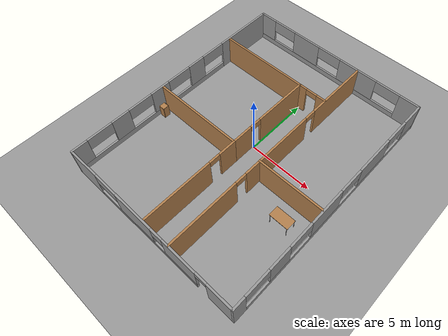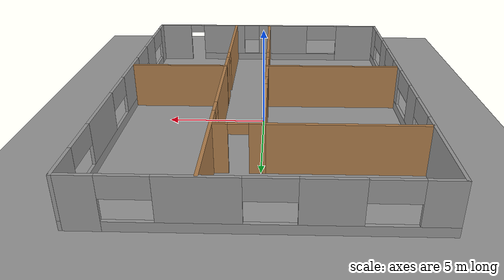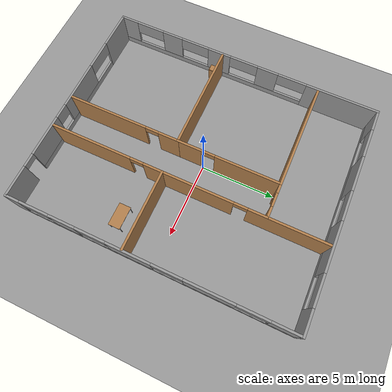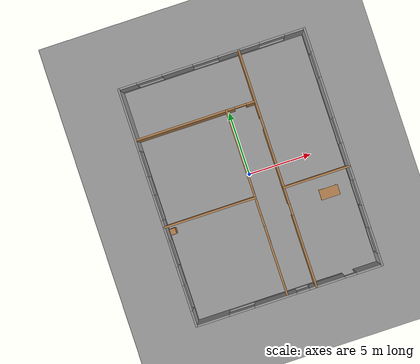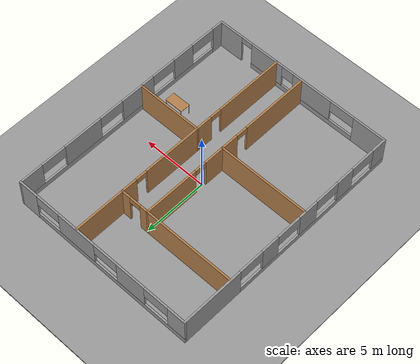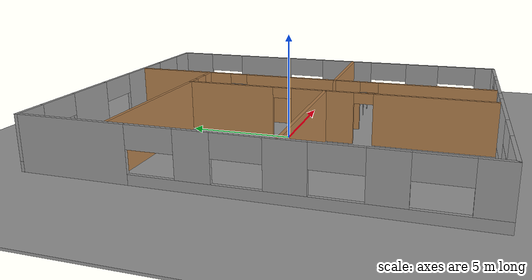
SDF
<sdf version="1.7">
 <world name="my_world">
  <plugin name="gazebo_ros_state" filename="libgazebo_ros_state.so"/>
  <model name="ground_plane">
   <static>1</static>
   <link name="link">
    <collision name="collision">
     <geometry><plane><normal>0 0 1</normal><size>100 100</size></plane></geometry>
     <surface><friction><ode><mu>100</mu><mu2>50</mu2></ode></friction></surface>
    </collision>
    <visual name="visual">
     <cast_shadows>0</cast_shadows>
     <geometry><plane><normal>0 0 1</normal><size>100 100</size></plane></geometry>
     <material>
      <script><uri>file://media/materials/scripts/gazebo.material</uri><name>Gazebo/Grey</name></script>
     </material>
    </visual>
   </link>
  </model>
  <light name="sun" type="directional">
   <pose>0 0 10 0 -0 0</pose>
   <diffuse>0.8 0.8 0.8 1</diffuse>
   <specular>0.2 0.2 0.2 1</specular>
   <attenuation>
    <range>1000</range>
    <constant>0.9</constant>
    <linear>0.01</linear>
    <quadratic>0.001</quadratic>
   </attenuation>
   <direction>-0.5 0.1 -0.9</direction>
   <spot><inner_angle>0</inner_angle><outer_angle>0</outer_angle><falloff>0</falloff></spot>
  </light>
  <gravity>0 0 -9.8</gravity>
  <magnetic_field>6e-06 2.3e-05 -4.2e-05</magnetic_field>
  <atmosphere type="adiabatic"/>
  <physics type="ode">
   <max_step_size>0.001</max_step_size>
   <real_time_factor>1</real_time_factor>
   <real_time_update_rate>1000</real_time_update_rate>
  </physics>
  <scene><ambient>0.4 0.4 0.4 1</ambient><background>0.7 0.7 0.7 1</background><shadows>1</shadows></scene>
  <audio><device>default</device></audio>
  <spherical_coordinates>
   <surface_model>EARTH_WGS84</surface_model>
   <latitude_deg>0</latitude_deg>
   <longitude_deg>0</longitude_deg>
   <elevation>0</elevation>
   <heading_deg>0</heading_deg>
  </spherical_coordinates>
  <model name="my_house_model ">
   <pose>0.00673 -0.23906 0 0 -0 0</pose>
   <link name="Wall_10">
    <pose>7.3 0 0 0 -0 1.5708</pose>
    <visual name="Wall_10_Visual_0">
     <pose>-8.87062 0 1.25 0 -0 0</pose>
     <geometry><box><size>1.00877 0.15 2.5</size></box></geometry>
     <material>
      <script><uri>file://media/materials/scripts/gazebo.material</uri><name>Gazebo/Grey</name></script>
      <ambient>1 1 1 1</ambient>
     </material>
     <meta><layer>0</layer></meta>
    </visual>
    <collision name="Wall_10_Collision_0">
     <geometry><box><size>1.00877 0.15 2.5</size></box></geometry>
     <pose>-8.87062 0 1.25 0 -0 0</pose>
    </collision>
    <visual name="Wall_10_Visual_1">
     <pose>0.504383 0 0.25 0 -0 0</pose>
     <geometry><box><size>17.7412 0.15 0.5</size></box></geometry>
     <material>
      <script><uri>file://media/materials/scripts/gazebo.material</uri><name>Gazebo/Grey</name></script>
      <ambient>1 1 1 1</ambient>
     </material>
     <meta><layer>0</layer></meta>
    </visual>
    <collision name="Wall_10_Collision_1">
     <geometry><box><size>17.7412 0.15 0.5</size></box></geometry>
     <pose>0.504383 0 0.25 0 -0 0</pose>
    </collision>
    <visual name="Wall_10_Visual_2">
     <pose>-5.47556 0 1.5 0 -0 0</pose>
     <geometry><box><size>1.78135 0.15 2</size></box></geometry>
     <material>
      <script><uri>file://media/materials/scripts/gazebo.material</uri><name>Gazebo/Grey</name></script>
      <ambient>1 1 1 1</ambient>
     </material>
     <meta><layer>0</layer></meta>
    </visual>
    <collision name="Wall_10_Collision_2">
     <geometry><box><size>1.78135 0.15 2</size></box></geometry>
     <pose>-5.47556 0 1.5 0 -0 0</pose>
    </collision>
    <visual name="Wall_10_Visual_3">
     <pose>-1.13544 0 1.5 0 -0 0</pose>
     <geometry><box><size>2.89889 0.15 2</size></box></geometry>
     <material>
      <script><uri>file://media/materials/scripts/gazebo.material</uri><name>Gazebo/Grey</name></script>
      <ambient>1 1 1 1</ambient>
     </material>
     <meta><layer>0</layer></meta>
    </visual>
    <collision name="Wall_10_Collision_3">
     <geometry><box><size>2.89889 0.15 2</size></box></geometry>
     <pose>-1.13544 0 1.5 0 -0 0</pose>
    </collision>
    <visual name="Wall_10_Visual_4">
     <pose>3.90464 0 1.5 0 -0 0</pose>
     <geometry><box><size>3.18126 0.15 2</size></box></geometry>
     <material>
      <script><uri>file://media/materials/scripts/gazebo.material</uri><name>Gazebo/Grey</name></script>
      <ambient>1 1 1 1</ambient>
     </material>
     <meta><layer>0</layer></meta>
    </visual>
    <collision name="Wall_10_Collision_4">
     <geometry><box><size>3.18126 0.15 2</size></box></geometry>
     <pose>3.90464 0 1.5 0 -0 0</pose>
    </collision>
    <visual name="Wall_10_Visual_5">
     <pose>8.43513 0 1.5 0 -0 0</pose>
     <geometry><box><size>1.87974 0.15 2</size></box></geometry>
     <material>
      <script><uri>file://media/materials/scripts/gazebo.material</uri><name>Gazebo/Grey</name></script>
      <ambient>1 1 1 1</ambient>
     </material>
     <meta><layer>0</layer></meta>
    </visual>
    <collision name="Wall_10_Collision_5">
     <geometry><box><size>1.87974 0.15 2</size></box></geometry>
     <pose>8.43513 0 1.5 0 -0 0</pose>
    </collision>
    <visual name="Wall_10_Visual_6">
     <pose>-7.36623 0 2 0 -0 0</pose>
     <geometry><box><size>2 0.15 1</size></box></geometry>
     <material>
      <script><uri>file://media/materials/scripts/gazebo.material</uri><name>Gazebo/Grey</name></script>
      <ambient>1 1 1 1</ambient>
     </material>
     <meta><layer>0</layer></meta>
    </visual>
    <collision name="Wall_10_Collision_6">
     <geometry><box><size>2 0.15 1</size></box></geometry>
     <pose>-7.36623 0 2 0 -0 0</pose>
    </collision>
    <visual name="Wall_10_Visual_7">
     <pose>-3.58488 0 2 0 -0 0</pose>
     <geometry><box><size>2 0.15 1</size></box></geometry>
     <material>
      <script><uri>file://media/materials/scripts/gazebo.material</uri><name>Gazebo/Grey</name></script>
      <ambient>1 1 1 1</ambient>
     </material>
     <meta><layer>0</layer></meta>
    </visual>
    <collision name="Wall_10_Collision_7">
     <geometry><box><size>2 0.15 1</size></box></geometry>
     <pose>-3.58488 0 2 0 -0 0</pose>
    </collision>
    <visual name="Wall_10_Visual_8">
     <pose>1.31401 0 2 0 -0 0</pose>
     <geometry><box><size>2 0.15 1</size></box></geometry>
     <material>
      <script><uri>file://media/materials/scripts/gazebo.material</uri><name>Gazebo/Grey</name></script>
      <ambient>1 1 1 1</ambient>
     </material>
     <meta><layer>0</layer></meta>
    </visual>
    <collision name="Wall_10_Collision_8">
     <geometry><box><size>2 0.15 1</size></box></geometry>
     <pose>1.31401 0 2 0 -0 0</pose>
    </collision>
    <visual name="Wall_10_Visual_9">
     <pose>6.49526 0 2 0 -0 0</pose>
     <geometry><box><size>2 0.15 1</size></box></geometry>
     <material>
      <script><uri>file://media/materials/scripts/gazebo.material</uri><name>Gazebo/Grey</name></script>
      <ambient>1 1 1 1</ambient>
     </material>
     <meta><layer>0</layer></meta>
    </visual>
    <collision name="Wall_10_Collision_9">
     <geometry><box><size>2 0.15 1</size></box></geometry>
     <pose>6.49526 0 2 0 -0 0</pose>
    </collision>
   </link>
   <link name="Wall_11">
    <pose>-0 9.3 0 0 -0 3.14159</pose>
    <visual name="Wall_11_Visual_0">
     <pose>-6.56245 0 1.25 0 -0 0</pose>
     <geometry><box><size>1.62511 0.15 2.5</size></box></geometry>
     <material>
      <script><uri>file://media/materials/scripts/gazebo.material</uri><name>Gazebo/Grey</name></script>
      <ambient>1 1 1 1</ambient>
     </material>
     <meta><layer>0</layer></meta>
    </visual>
    <collision name="Wall_11_Collision_0">
     <geometry><box><size>1.62511 0.15 2.5</size></box></geometry>
     <pose>-6.56245 0 1.25 0 -0 0</pose>
    </collision>
    <visual name="Wall_11_Visual_1">
     <pose>0.812553 0 0.25 0 -0 0</pose>
     <geometry><box><size>13.1249 0.15 0.5</size></box></geometry>
     <material>
      <script><uri>file://media/materials/scripts/gazebo.material</uri><name>Gazebo/Grey</name></script>
      <ambient>1 1 1 1</ambient>
     </material>
     <meta><layer>0</layer></meta>
    </visual>
    <collision name="Wall_11_Collision_1">
     <geometry><box><size>13.1249 0.15 0.5</size></box></geometry>
     <pose>0.812553 0 0.25 0 -0 0</pose>
    </collision>
    <visual name="Wall_11_Visual_2">
     <pose>-2.13613 0 1.5 0 -0 0</pose>
     <geometry><box><size>3.22752 0.15 2</size></box></geometry>
     <material>
      <script><uri>file://media/materials/scripts/gazebo.material</uri><name>Gazebo/Grey</name></script>
      <ambient>1 1 1 1</ambient>
     </material>
     <meta><layer>0</layer></meta>
    </visual>
    <collision name="Wall_11_Collision_2">
     <geometry><box><size>3.22752 0.15 2</size></box></geometry>
     <pose>-2.13613 0 1.5 0 -0 0</pose>
    </collision>
    <visual name="Wall_11_Visual_3">
     <pose>2.68382 0 1.5 0 -0 0</pose>
     <geometry><box><size>2.41238 0.15 2</size></box></geometry>
     <material>
      <script><uri>file://media/materials/scripts/gazebo.material</uri><name>Gazebo/Grey</name></script>
      <ambient>1 1 1 1</ambient>
     </material>
     <meta><layer>0</layer></meta>
    </visual>
    <collision name="Wall_11_Collision_3">
     <geometry><box><size>2.41238 0.15 2</size></box></geometry>
     <pose>2.68382 0 1.5 0 -0 0</pose>
    </collision>
    <visual name="Wall_11_Visual_4">
     <pose>6.6325 0 1.5 0 -0 0</pose>
     <geometry><box><size>1.48499 0.15 2</size></box></geometry>
     <material>
      <script><uri>file://media/materials/scripts/gazebo.material</uri><name>Gazebo/Grey</name></script>
      <ambient>1 1 1 1</ambient>
     </material>
     <meta><layer>0</layer></meta>
    </visual>
    <collision name="Wall_11_Collision_4">
     <geometry><box><size>1.48499 0.15 2</size></box></geometry>
     <pose>6.6325 0 1.5 0 -0 0</pose>
    </collision>
    <visual name="Wall_11_Visual_5">
     <pose>-4.74989 0 2 0 -0 0</pose>
     <geometry><box><size>2 0.15 1</size></box></geometry>
     <material>
      <script><uri>file://media/materials/scripts/gazebo.material</uri><name>Gazebo/Grey</name></script>
      <ambient>1 1 1 1</ambient>
     </material>
     <meta><layer>0</layer></meta>
    </visual>
    <collision name="Wall_11_Collision_5">
     <geometry><box><size>2 0.15 1</size></box></geometry>
     <pose>-4.74989 0 2 0 -0 0</pose>
    </collision>
    <visual name="Wall_11_Visual_6">
     <pose>0.477623 0 2 0 -0 0</pose>
     <geometry><box><size>2 0.15 1</size></box></geometry>
     <material>
      <script><uri>file://media/materials/scripts/gazebo.material</uri><name>Gazebo/Grey</name></script>
      <ambient>1 1 1 1</ambient>
     </material>
     <meta><layer>0</layer></meta>
    </visual>
    <collision name="Wall_11_Collision_6">
     <geometry><box><size>2 0.15 1</size></box></geometry>
     <pose>0.477623 0 2 0 -0 0</pose>
    </collision>
    <visual name="Wall_11_Visual_7">
     <pose>4.89001 0 2 0 -0 0</pose>
     <geometry><box><size>2 0.15 1</size></box></geometry>
     <material>
      <script><uri>file://media/materials/scripts/gazebo.material</uri><name>Gazebo/Grey</name></script>
      <ambient>1 1 1 1</ambient>
     </material>
     <meta><layer>0</layer></meta>
    </visual>
    <collision name="Wall_11_Collision_7">
     <geometry><box><size>2 0.15 1</size></box></geometry>
     <pose>4.89001 0 2 0 -0 0</pose>
    </collision>
   </link>
   <link name="Wall_12">
    <pose>-7.3 0 0 0 -0 -1.5708</pose>
    <visual name="Wall_12_Visual_0">
     <pose>-6.91493 0 1.25 0 -0 0</pose>
     <geometry><box><size>4.92013 0.15 2.5</size></box></geometry>
     <material>
      <script><uri>file://media/materials/scripts/gazebo.material</uri><name>Gazebo/Grey</name></script>
      <ambient>1 1 1 1</ambient>
     </material>
     <meta><layer>0</layer></meta>
    </visual>
    <collision name="Wall_12_Collision_0">
     <geometry><box><size>4.92013 0.15 2.5</size></box></geometry>
     <pose>-6.91493 0 1.25 0 -0 0</pose>
    </collision>
    <visual name="Wall_12_Visual_1">
     <pose>2.46007 0 0.25 0 -0 0</pose>
     <geometry><box><size>13.8299 0.15 0.5</size></box></geometry>
     <material>
      <script><uri>file://media/materials/scripts/gazebo.material</uri><name>Gazebo/Grey</name></script>
      <ambient>1 1 1 1</ambient>
     </material>
     <meta><layer>0</layer></meta>
    </visual>
    <collision name="Wall_12_Collision_1">
     <geometry><box><size>13.8299 0.15 0.5</size></box></geometry>
     <pose>2.46007 0 0.25 0 -0 0</pose>
    </collision>
    <visual name="Wall_12_Visual_2">
     <pose>-1.7251 0 1.5 0 -0 0</pose>
     <geometry><box><size>1.45953 0.15 2</size></box></geometry>
     <material>
      <script><uri>file://media/materials/scripts/gazebo.material</uri><name>Gazebo/Grey</name></script>
      <ambient>1 1 1 1</ambient>
     </material>
     <meta><layer>0</layer></meta>
    </visual>
    <collision name="Wall_12_Collision_2">
     <geometry><box><size>1.45953 0.15 2</size></box></geometry>
     <pose>-1.7251 0 1.5 0 -0 0</pose>
    </collision>
    <visual name="Wall_12_Visual_3">
     <pose>1.8203 0 1.5 0 -0 0</pose>
     <geometry><box><size>1.63128 0.15 2</size></box></geometry>
     <material>
      <script><uri>file://media/materials/scripts/gazebo.material</uri><name>Gazebo/Grey</name></script>
      <ambient>1 1 1 1</ambient>
     </material>
     <meta><layer>0</layer></meta>
    </visual>
    <collision name="Wall_12_Collision_3">
     <geometry><box><size>1.63128 0.15 2</size></box></geometry>
     <pose>1.8203 0 1.5 0 -0 0</pose>
    </collision>
    <visual name="Wall_12_Visual_4">
     <pose>5.37074 0 1.5 0 -0 0</pose>
     <geometry><box><size>1.46959 0.15 2</size></box></geometry>
     <material>
      <script><uri>file://media/materials/scripts/gazebo.material</uri><name>Gazebo/Grey</name></script>
      <ambient>1 1 1 1</ambient>
     </material>
     <meta><layer>0</layer></meta>
    </visual>
    <collision name="Wall_12_Collision_4">
     <geometry><box><size>1.46959 0.15 2</size></box></geometry>
     <pose>5.37074 0 1.5 0 -0 0</pose>
    </collision>
    <visual name="Wall_12_Visual_5">
     <pose>8.74027 0 1.5 0 -0 0</pose>
     <geometry><box><size>1.26947 0.15 2</size></box></geometry>
     <material>
      <script><uri>file://media/materials/scripts/gazebo.material</uri><name>Gazebo/Grey</name></script>
      <ambient>1 1 1 1</ambient>
     </material>
     <meta><layer>0</layer></meta>
    </visual>
    <collision name="Wall_12_Collision_5">
     <geometry><box><size>1.26947 0.15 2</size></box></geometry>
     <pose>8.74027 0 1.5 0 -0 0</pose>
    </collision>
    <visual name="Wall_12_Visual_6">
     <pose>-3.45487 0 2 0 -0 0</pose>
     <geometry><box><size>2 0.15 1</size></box></geometry>
     <material>
      <script><uri>file://media/materials/scripts/gazebo.material</uri><name>Gazebo/Grey</name></script>
      <ambient>1 1 1 1</ambient>
     </material>
     <meta><layer>0</layer></meta>
    </visual>
    <collision name="Wall_12_Collision_6">
     <geometry><box><size>2 0.15 1</size></box></geometry>
     <pose>-3.45487 0 2 0 -0 0</pose>
    </collision>
    <visual name="Wall_12_Visual_7">
     <pose>0.004666 0 2 0 -0 0</pose>
     <geometry><box><size>2 0.15 1</size></box></geometry>
     <material>
      <script><uri>file://media/materials/scripts/gazebo.material</uri><name>Gazebo/Grey</name></script>
      <ambient>1 1 1 1</ambient>
     </material>
     <meta><layer>0</layer></meta>
    </visual>
    <collision name="Wall_12_Collision_7">
     <geometry><box><size>2 0.15 1</size></box></geometry>
     <pose>0.004666 0 2 0 -0 0</pose>
    </collision>
    <visual name="Wall_12_Visual_8">
     <pose>3.63594 0 2 0 -0 0</pose>
     <geometry><box><size>2 0.15 1</size></box></geometry>
     <material>
      <script><uri>file://media/materials/scripts/gazebo.material</uri><name>Gazebo/Grey</name></script>
      <ambient>1 1 1 1</ambient>
     </material>
     <meta><layer>0</layer></meta>
    </visual>
    <collision name="Wall_12_Collision_8">
     <geometry><box><size>2 0.15 1</size></box></geometry>
     <pose>3.63594 0 2 0 -0 0</pose>
    </collision>
    <visual name="Wall_12_Visual_9">
     <pose>7.10553 0 2 0 -0 0</pose>
     <geometry><box><size>2 0.15 1</size></box></geometry>
     <material>
      <script><uri>file://media/materials/scripts/gazebo.material</uri><name>Gazebo/Grey</name></script>
      <ambient>1 1 1 1</ambient>
     </material>
     <meta><layer>0</layer></meta>
    </visual>
    <collision name="Wall_12_Collision_9">
     <geometry><box><size>2 0.15 1</size></box></geometry>
     <pose>7.10553 0 2 0 -0 0</pose>
    </collision>
   </link>
   <link name="Wall_14">
    <collision name="Wall_14_Collision">
     <geometry><box><size>5.25 0.15 2.5</size></box></geometry>
     <pose>0 0 1.25 0 -0 0</pose>
    </collision>
    <visual name="Wall_14_Visual">
     <pose>0 0 1.25 0 -0 0</pose>
     <geometry><box><size>5.25 0.15 2.5</size></box></geometry>
     <material>
      <script><uri>file://media/materials/scripts/gazebo.material</uri><name>Gazebo/Wood</name></script>
      <ambient>1 1 1 1</ambient>
     </material>
     <meta><layer>0</layer></meta>
    </visual>
    <pose>4.68651 -1.51453 0 0 -0 3.14159</pose>
   </link>
   <link name="Wall_15">
    <pose>2.13651 -5.38953 0 0 -0 -1.5708</pose>
    <visual name="Wall_15_Visual_0">
     <pose>-3.26184 0 1.25 0 -0 0</pose>
     <geometry><box><size>1.37632 0.15 2.5</size></box></geometry>
     <material>
      <script><uri>file://media/materials/scripts/gazebo.material</uri><name>Gazebo/Wood</name></script>
      <ambient>1 1 1 1</ambient>
     </material>
     <meta><layer>0</layer></meta>
    </visual>
    <collision name="Wall_15_Collision_0">
     <geometry><box><size>1.37632 0.15 2.5</size></box></geometry>
     <pose>-3.26184 0 1.25 0 -0 0</pose>
    </collision>
    <visual name="Wall_15_Visual_1">
     <pose>1.13816 0 1.25 0 -0 0</pose>
     <geometry><box><size>5.62368 0.15 2.5</size></box></geometry>
     <material>
      <script><uri>file://media/materials/scripts/gazebo.material</uri><name>Gazebo/Wood</name></script>
      <ambient>1 1 1 1</ambient>
     </material>
     <meta><layer>0</layer></meta>
    </visual>
    <collision name="Wall_15_Collision_1">
     <geometry><box><size>5.62368 0.15 2.5</size></box></geometry>
     <pose>1.13816 0 1.25 0 -0 0</pose>
    </collision>
    <visual name="Wall_15_Visual_2">
     <pose>-2.12368 0 2.25 0 -0 0</pose>
     <geometry><box><size>0.9 0.15 0.5</size></box></geometry>
     <material>
      <script><uri>file://media/materials/scripts/gazebo.material</uri><name>Gazebo/Wood</name></script>
      <ambient>1 1 1 1</ambient>
     </material>
     <meta><layer>0</layer></meta>
    </visual>
    <collision name="Wall_15_Collision_2">
     <geometry><box><size>0.9 0.15 0.5</size></box></geometry>
     <pose>-2.12368 0 2.25 0 -0 0</pose>
    </collision>
   </link>
   <link name="Wall_17">
    <collision name="Wall_17_Collision">
     <geometry><box><size>7.25 0.15 2.5</size></box></geometry>
     <pose>0 0 1.25 0 -0 0</pose>
    </collision>
    <visual name="Wall_17_Visual">
     <pose>0 0 1.25 0 -0 0</pose>
     <geometry><box><size>7.25 0.15 2.5</size></box></geometry>
     <material>
      <script><uri>file://media/materials/scripts/gazebo.material</uri><name>Gazebo/Wood</name></script>
      <ambient>1 1 1 1</ambient>
     </material>
     <meta><layer>0</layer></meta>
    </visual>
    <pose>-3.68176 -1.55419 0 0 -0 0</pose>
   </link>
   <link name="Wall_18">
    <pose>-0.131761 -5.35419 0 0 -0 -1.5708</pose>
    <visual name="Wall_18_Visual_0">
     <pose>-3.16041 0 1.25 0 -0 0</pose>
     <geometry><box><size>1.42919 0.15 2.5</size></box></geometry>
     <material>
      <script><uri>file://media/materials/scripts/gazebo.material</uri><name>Gazebo/Wood</name></script>
      <ambient>1 1 1 1</ambient>
     </material>
     <meta><layer>0</layer></meta>
    </visual>
    <collision name="Wall_18_Collision_0">
     <geometry><box><size>1.42919 0.15 2.5</size></box></geometry>
     <pose>-3.16041 0 1.25 0 -0 0</pose>
    </collision>
    <visual name="Wall_18_Visual_1">
     <pose>1.16459 0 1.25 0 -0 0</pose>
     <geometry><box><size>5.42081 0.15 2.5</size></box></geometry>
     <material>
      <script><uri>file://media/materials/scripts/gazebo.material</uri><name>Gazebo/Wood</name></script>
      <ambient>1 1 1 1</ambient>
     </material>
     <meta><layer>0</layer></meta>
    </visual>
    <collision name="Wall_18_Collision_1">
     <geometry><box><size>5.42081 0.15 2.5</size></box></geometry>
     <pose>1.16459 0 1.25 0 -0 0</pose>
    </collision>
    <visual name="Wall_18_Visual_2">
     <pose>-1.99581 0 2.25 0 -0 0</pose>
     <geometry><box><size>0.9 0.15 0.5</size></box></geometry>
     <material>
      <script><uri>file://media/materials/scripts/gazebo.material</uri><name>Gazebo/Wood</name></script>
      <ambient>1 1 1 1</ambient>
     </material>
     <meta><layer>0</layer></meta>
    </visual>
    <collision name="Wall_18_Collision_2">
     <geometry><box><size>0.9 0.15 0.5</size></box></geometry>
     <pose>-1.99581 0 2.25 0 -0 0</pose>
    </collision>
   </link>
   <link name="Wall_20">
    <pose>-0.131761 1.87081 0 0 -0 1.5708</pose>
    <visual name="Wall_20_Visual_0">
     <pose>-2.64662 0 1.25 0 -0 0</pose>
     <geometry><box><size>1.70676 0.15 2.5</size></box></geometry>
     <material>
      <script><uri>file://media/materials/scripts/gazebo.material</uri><name>Gazebo/Wood</name></script>
      <ambient>1 1 1 1</ambient>
     </material>
     <meta><layer>0</layer></meta>
    </visual>
    <collision name="Wall_20_Collision_0">
     <geometry><box><size>1.70676 0.15 2.5</size></box></geometry>
     <pose>-2.64662 0 1.25 0 -0 0</pose>
    </collision>
    <visual name="Wall_20_Visual_1">
     <pose>1.30338 0 1.25 0 -0 0</pose>
     <geometry><box><size>4.39325 0.15 2.5</size></box></geometry>
     <material>
      <script><uri>file://media/materials/scripts/gazebo.material</uri><name>Gazebo/Wood</name></script>
      <ambient>1 1 1 1</ambient>
     </material>
     <meta><layer>0</layer></meta>
    </visual>
    <collision name="Wall_20_Collision_1">
     <geometry><box><size>4.39325 0.15 2.5</size></box></geometry>
     <pose>1.30338 0 1.25 0 -0 0</pose>
    </collision>
    <visual name="Wall_20_Visual_2">
     <pose>-1.34325 0 2.25 0 -0 0</pose>
     <geometry><box><size>0.9 0.15 0.5</size></box></geometry>
     <material>
      <script><uri>file://media/materials/scripts/gazebo.material</uri><name>Gazebo/Wood</name></script>
      <ambient>1 1 1 1</ambient>
     </material>
     <meta><layer>0</layer></meta>
    </visual>
    <collision name="Wall_20_Collision_2">
     <geometry><box><size>0.9 0.15 0.5</size></box></geometry>
     <pose>-1.34325 0 2.25 0 -0 0</pose>
    </collision>
   </link>
   <link name="Wall_21">
    <collision name="Wall_21_Collision">
     <geometry><box><size>7.25 0.15 2.5</size></box></geometry>
     <pose>0 0 1.25 0 -0 0</pose>
    </collision>
    <visual name="Wall_21_Visual">
     <pose>0 0 1.25 0 -0 0</pose>
     <geometry><box><size>7.25 0.15 2.5</size></box></geometry>
     <material>
      <script><uri>file://media/materials/scripts/gazebo.material</uri><name>Gazebo/Wood</name></script>
      <ambient>1 1 1 1</ambient>
     </material>
     <meta><layer>0</layer></meta>
    </visual>
    <pose>-3.68176 5.29581 0 0 -0 3.14159</pose>
   </link>
   <link name="Wall_23">
    <pose>2.13651 3.86047 0 0 -0 1.5708</pose>
    <visual name="Wall_23_Visual_0">
     <pose>-3.0667 0 1.25 0 -0 0</pose>
     <geometry><box><size>4.7666 0.15 2.5</size></box></geometry>
     <material>
      <script><uri>file://media/materials/scripts/gazebo.material</uri><name>Gazebo/Wood</name></script>
      <ambient>1 1 1 1</ambient>
     </material>
     <meta><layer>0</layer></meta>
    </visual>
    <collision name="Wall_23_Collision_0">
     <geometry><box><size>4.7666 0.15 2.5</size></box></geometry>
     <pose>-3.0667 0 1.25 0 -0 0</pose>
    </collision>
    <visual name="Wall_23_Visual_1">
     <pose>2.8333 0 1.25 0 -0 0</pose>
     <geometry><box><size>5.2334 0.15 2.5</size></box></geometry>
     <material>
      <script><uri>file://media/materials/scripts/gazebo.material</uri><name>Gazebo/Wood</name></script>
      <ambient>1 1 1 1</ambient>
     </material>
     <meta><layer>0</layer></meta>
    </visual>
    <collision name="Wall_23_Collision_1">
     <geometry><box><size>5.2334 0.15 2.5</size></box></geometry>
     <pose>2.8333 0 1.25 0 -0 0</pose>
    </collision>
    <visual name="Wall_23_Visual_2">
     <pose>-0.233398 0 2.25 0 -0 0</pose>
     <geometry><box><size>0.9 0.15 0.5</size></box></geometry>
     <material>
      <script><uri>file://media/materials/scripts/gazebo.material</uri><name>Gazebo/Wood</name></script>
      <ambient>1 1 1 1</ambient>
     </material>
     <meta><layer>0</layer></meta>
    </visual>
    <collision name="Wall_23_Collision_2">
     <geometry><box><size>0.9 0.15 0.5</size></box></geometry>
     <pose>-0.233398 0 2.25 0 -0 0</pose>
    </collision>
   </link>
   <link name="Wall_27">
    <pose>0.993239 5.29581 0 0 -0 0</pose>
    <visual name="Wall_27_Visual_0">
     <pose>-0.843382 0 1.25 0 -0 0</pose>
     <geometry><box><size>0.713235 0.15 2.5</size></box></geometry>
     <material>
      <script><uri>file://media/materials/scripts/gazebo.material</uri><name>Gazebo/Wood</name></script>
      <ambient>1 1 1 1</ambient>
     </material>
     <meta><layer>0</layer></meta>
    </visual>
    <collision name="Wall_27_Collision_0">
     <geometry><box><size>0.713235 0.15 2.5</size></box></geometry>
     <pose>-0.843382 0 1.25 0 -0 0</pose>
    </collision>
    <visual name="Wall_27_Visual_1">
     <pose>0.806618 0 1.25 0 -0 0</pose>
     <geometry><box><size>0.786765 0.15 2.5</size></box></geometry>
     <material>
      <script><uri>file://media/materials/scripts/gazebo.material</uri><name>Gazebo/Wood</name></script>
      <ambient>1 1 1 1</ambient>
     </material>
     <meta><layer>0</layer></meta>
    </visual>
    <collision name="Wall_27_Collision_1">
     <geometry><box><size>0.786765 0.15 2.5</size></box></geometry>
     <pose>0.806618 0 1.25 0 -0 0</pose>
    </collision>
    <visual name="Wall_27_Visual_2">
     <pose>-0.036765 0 2.25 0 -0 0</pose>
     <geometry><box><size>0.9 0.15 0.5</size></box></geometry>
     <material>
      <script><uri>file://media/materials/scripts/gazebo.material</uri><name>Gazebo/Wood</name></script>
      <ambient>1 1 1 1</ambient>
     </material>
     <meta><layer>0</layer></meta>
    </visual>
    <collision name="Wall_27_Collision_2">
     <geometry><box><size>0.9 0.15 0.5</size></box></geometry>
     <pose>-0.036765 0 2.25 0 -0 0</pose>
    </collision>
   </link>
   <link name="Wall_7">
    <pose>-0 -9.3 0 0 -0 0</pose>
    <visual name="Wall_7_Visual_0">
     <pose>-6.04545 0 1.25 0 -0 0</pose>
     <geometry><box><size>2.65909 0.15 2.5</size></box></geometry>
     <material>
      <script><uri>file://media/materials/scripts/gazebo.material</uri><name>Gazebo/Grey</name></script>
      <ambient>1 1 1 1</ambient>
     </material>
     <meta><layer>0</layer></meta>
    </visual>
    <collision name="Wall_7_Collision_0">
     <geometry><box><size>2.65909 0.15 2.5</size></box></geometry>
     <pose>-6.04545 0 1.25 0 -0 0</pose>
    </collision>
    <visual name="Wall_7_Visual_1">
     <pose>6.33371 0 1.25 0 -0 0</pose>
     <geometry><box><size>2.08258 0.15 2.5</size></box></geometry>
     <material>
      <script><uri>file://media/materials/scripts/gazebo.material</uri><name>Gazebo/Grey</name></script>
      <ambient>1 1 1 1</ambient>
     </material>
     <meta><layer>0</layer></meta>
    </visual>
    <collision name="Wall_7_Collision_1">
     <geometry><box><size>2.08258 0.15 2.5</size></box></geometry>
     <pose>6.33371 0 1.25 0 -0 0</pose>
    </collision>
    <visual name="Wall_7_Visual_2">
     <pose>-0.161746 0 0.25 0 -0 0</pose>
     <geometry><box><size>9.10833 0.15 0.5</size></box></geometry>
     <material>
      <script><uri>file://media/materials/scripts/gazebo.material</uri><name>Gazebo/Grey</name></script>
      <ambient>1 1 1 1</ambient>
     </material>
     <meta><layer>0</layer></meta>
    </visual>
    <collision name="Wall_7_Collision_2">
     <geometry><box><size>9.10833 0.15 0.5</size></box></geometry>
     <pose>-0.161746 0 0.25 0 -0 0</pose>
    </collision>
    <visual name="Wall_7_Visual_3">
     <pose>-1.06032 0 1.5 0 -0 0</pose>
     <geometry><box><size>3.31117 0.15 2</size></box></geometry>
     <material>
      <script><uri>file://media/materials/scripts/gazebo.material</uri><name>Gazebo/Grey</name></script>
      <ambient>1 1 1 1</ambient>
     </material>
     <meta><layer>0</layer></meta>
    </visual>
    <collision name="Wall_7_Collision_3">
     <geometry><box><size>3.31117 0.15 2</size></box></geometry>
     <pose>-1.06032 0 1.5 0 -0 0</pose>
    </collision>
    <visual name="Wall_7_Visual_4">
     <pose>2.99384 0 1.5 0 -0 0</pose>
     <geometry><box><size>2.79716 0.15 2</size></box></geometry>
     <material>
      <script><uri>file://media/materials/scripts/gazebo.material</uri><name>Gazebo/Grey</name></script>
      <ambient>1 1 1 1</ambient>
     </material>
     <meta><layer>0</layer></meta>
    </visual>
    <collision name="Wall_7_Collision_4">
     <geometry><box><size>2.79716 0.15 2</size></box></geometry>
     <pose>2.99384 0 1.5 0 -0 0</pose>
    </collision>
    <visual name="Wall_7_Visual_5">
     <pose>-3.71591 0 2 0 -0 0</pose>
     <geometry><box><size>2 0.15 1</size></box></geometry>
     <material>
      <script><uri>file://media/materials/scripts/gazebo.material</uri><name>Gazebo/Grey</name></script>
      <ambient>1 1 1 1</ambient>
     </material>
     <meta><layer>0</layer></meta>
    </visual>
    <collision name="Wall_7_Collision_5">
     <geometry><box><size>2 0.15 1</size></box></geometry>
     <pose>-3.71591 0 2 0 -0 0</pose>
    </collision>
    <visual name="Wall_7_Visual_6">
     <pose>1.09526 0 2 0 -0 0</pose>
     <geometry><box><size>1 0.15 1</size></box></geometry>
     <material>
      <script><uri>file://media/materials/scripts/gazebo.material</uri><name>Gazebo/Grey</name></script>
      <ambient>1 1 1 1</ambient>
     </material>
     <meta><layer>0</layer></meta>
    </visual>
    <collision name="Wall_7_Collision_6">
     <geometry><box><size>1 0.15 1</size></box></geometry>
     <pose>1.09526 0 2 0 -0 0</pose>
    </collision>
    <visual name="Wall_7_Visual_7">
     <pose>4.84242 0 2.25 0 -0 0</pose>
     <geometry><box><size>0.9 0.15 0.5</size></box></geometry>
     <material>
      <script><uri>file://media/materials/scripts/gazebo.material</uri><name>Gazebo/Grey</name></script>
      <ambient>1 1 1 1</ambient>
     </material>
     <meta><layer>0</layer></meta>
    </visual>
    <collision name="Wall_7_Collision_7">
     <geometry><box><size>0.9 0.15 0.5</size></box></geometry>
     <pose>4.84242 0 2.25 0 -0 0</pose>
    </collision>
   </link>
   <static>1</static>
  </model>
  <model name="ground_plane_0">
   <static>1</static>
   <link name="link">
    <collision name="collision">
     <geometry><plane><normal>0 0 1</normal><size>100 100</size></plane></geometry>
     <surface><friction><ode><mu>100</mu><mu2>50</mu2></ode></friction></surface>
    </collision>
    <visual name="visual">
     <cast_shadows>0</cast_shadows>
     <geometry><plane><normal>0 0 1</normal><size>100 100</size></plane></geometry>
     <material>
      <script><uri>file://media/materials/scripts/gazebo.material</uri><name>Gazebo/Grey</name></script>
     </material>
    </visual>
   </link>
   <pose>-4.74594 -4.03213 0 0 -0 0</pose>
  </model>
  <model name="table">
   <static>1</static>
   <link name="link">
    <collision name="surface">
     <pose>0 0 1 0 -0 0</pose>
     <geometry><box><size>1.5 0.8 0.03</size></box></geometry>
     <surface><friction><ode><mu>0.6</mu><mu2>0.6</mu2></ode></friction></surface>
    </collision>
    <visual name="visual1">
     <pose>0 0 1 0 -0 0</pose>
     <geometry><box><size>1.5 0.8 0.03</size></box></geometry>
     <material>
      <script><uri>file://media/materials/scripts/gazebo.material</uri><name>Gazebo/Wood</name></script>
     </material>
    </visual>
    <collision name="front_left_leg_collision">
     <pose>0.68 0.38 0.5 0 -0 0</pose>
     <geometry><cylinder><radius>0.02</radius><length>1</length></cylinder></geometry>
    </collision>
    <visual name="front_left_leg_visual">
     <pose>0.68 0.38 0.5 0 -0 0</pose>
     <geometry><cylinder><radius>0.02</radius><length>1</length></cylinder></geometry>
     <material>
      <script><uri>file://media/materials/scripts/gazebo.material</uri><name>Gazebo/Grey</name></script>
     </material>
    </visual>
    <collision name="front_right_leg_collision">
     <pose>0.68 -0.38 0.5 0 -0 0</pose>
     <geometry><cylinder><radius>0.02</radius><length>1</length></cylinder></geometry>
    </collision>
    <visual name="front_right_leg_visual">
     <pose>0.68 -0.38 0.5 0 -0 0</pose>
     <geometry><cylinder><radius>0.02</radius><length>1</length></cylinder></geometry>
     <material>
      <script><uri>file://media/materials/scripts/gazebo.material</uri><name>Gazebo/Grey</name></script>
     </material>
    </visual>
    <collision name="back_right_leg_collision">
     <pose>-0.68 -0.38 0.5 0 -0 0</pose>
     <geometry><cylinder><radius>0.02</radius><length>1</length></cylinder></geometry>
    </collision>
    <visual name="back_right_leg_visual">
     <pose>-0.68 -0.38 0.5 0 -0 0</pose>
     <geometry><cylinder><radius>0.02</radius><length>1</length></cylinder></geometry>
     <material>
      <script><uri>file://media/materials/scripts/gazebo.material</uri><name>Gazebo/Grey</name></script>
     </material>
    </visual>
    <collision name="back_left_leg_collision">
     <pose>-0.68 0.38 0.5 0 -0 0</pose>
     <geometry><cylinder><radius>0.02</radius><length>1</length></cylinder></geometry>
    </collision>
    <visual name="back_left_leg_visual">
     <pose>-0.68 0.38 0.5 0 -0 0</pose>
     <geometry><cylinder><radius>0.02</radius><length>1</length></cylinder></geometry>
     <material>
      <script><uri>file://media/materials/scripts/gazebo.material</uri><name>Gazebo/Grey</name></script>
     </material>
    </visual>
   </link>
   <pose>5.38844 -3.2058 0 0 -0 0</pose>
  </model>
  <model name="cabinet">
   <static>1</static>
   <link name="cabinet_bottom_plate">
    <inertial>
     <pose>0 0 -1 0 -0 0</pose>
     <inertia><ixx>2.05</ixx><ixy>0</ixy><ixz>0</ixz><iyy>2.05</iyy><iyz>0</iyz><izz>2.05</izz></inertia>
     <mass>25</mass>
    </inertial>
    <collision name="cabinet_bottom_plate_geom">
     <pose>0 0 0.01 0 -0 0</pose>
     <geometry><box><size>0.45 0.45 0.02</size></box></geometry>
    </collision>
    <visual name="cabinet_bottom_plate_geom_visual">
     <pose>0 0 0.01 0 -0 0</pose>
     <geometry><box><size>0.45 0.45 0.02</size></box></geometry>
     <material>
      <script><uri>file://media/materials/scripts/gazebo.material</uri><name>Gazebo/Wood</name></script>
     </material>
    </visual>
    <collision name="cabinet_bottom_plate_geom_cabinet_back_plate">
     <pose>0.235 0 0.51 0 -0 0</pose>
     <geometry><box><size>0.02 0.45 1.02</size></box></geometry>
    </collision>
    <visual name="cabinet_bottom_plate_geom_cabinet_back_plate_visual">
     <pose>0.235 0 0.51 0 -0 0</pose>
     <geometry><box><size>0.02 0.45 1.02</size></box></geometry>
     <material>
      <script><uri>file://media/materials/scripts/gazebo.material</uri><name>Gazebo/Wood</name></script>
     </material>
    </visual>
    <collision name="cabinet_bottom_plate_geom_cabinet_left_plate">
     <pose>0 0.235 0.51 0 -0 0</pose>
     <geometry><box><size>0.45 0.02 1.02</size></box></geometry>
    </collision>
    <visual name="cabinet_bottom_plate_geom_cabinet_left_plate_visual">
     <pose>0 0.235 0.51 0 -0 0</pose>
     <geometry><box><size>0.45 0.02 1.02</size></box></geometry>
     <material>
      <script><uri>file://media/materials/scripts/gazebo.material</uri><name>Gazebo/Wood</name></script>
     </material>
    </visual>
    <collision name="cabinet_bottom_plate_geom_cabinet_middle_plate">
     <pose>0 0 0.51 0 -0 0</pose>
     <geometry><box><size>0.45 0.45 0.02</size></box></geometry>
    </collision>
    <visual name="cabinet_bottom_plate_geom_cabinet_middle_plate_visual">
     <pose>0 0 0.51 0 -0 0</pose>
     <geometry><box><size>0.45 0.45 0.02</size></box></geometry>
     <material>
      <script><uri>file://media/materials/scripts/gazebo.material</uri><name>Gazebo/Wood</name></script>
     </material>
    </visual>
    <collision name="cabinet_bottom_plate_geom_cabinet_right_plate">
     <pose>0 -0.235 0.51 0 -0 0</pose>
     <geometry><box><size>0.45 0.02 1.02</size></box></geometry>
    </collision>
    <visual name="cabinet_bottom_plate_geom_cabinet_right_plate_visual">
     <pose>0 -0.235 0.51 0 -0 0</pose>
     <geometry><box><size>0.45 0.02 1.02</size></box></geometry>
     <material>
      <script><uri>file://media/materials/scripts/gazebo.material</uri><name>Gazebo/Wood</name></script>
     </material>
    </visual>
    <collision name="cabinet_bottom_plate_geom_cabinet_top_plate">
     <pose>0 0 1.01 0 -0 0</pose>
     <geometry><box><size>0.45 0.45 0.02</size></box></geometry>
    </collision>
    <visual name="cabinet_bottom_plate_geom_cabinet_top_plate_visual">
     <pose>0 0 1.01 0 -0 0</pose>
     <geometry><box><size>0.45 0.45 0.02</size></box></geometry>
     <material>
      <script><uri>file://media/materials/scripts/gazebo.material</uri><name>Gazebo/Wood</name></script>
     </material>
    </visual>
   </link>
   <pose>-6.90663 -2.31448 0 0 -0 0</pose>
  </model>
  <plugin name="gazebo_link_attacher" filename="libgazebo_link_attacher.so"/>
 </world>
</sdf>
